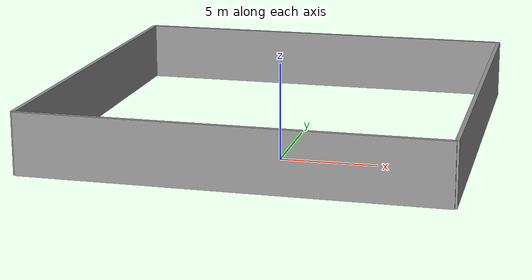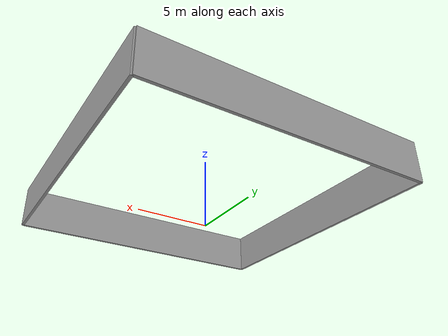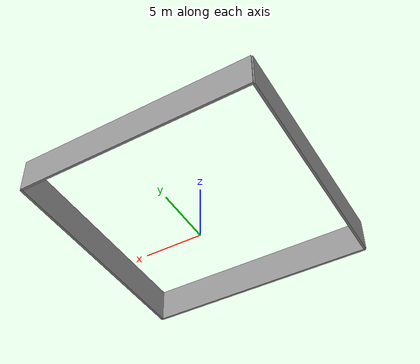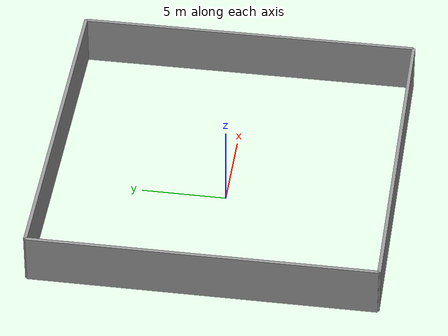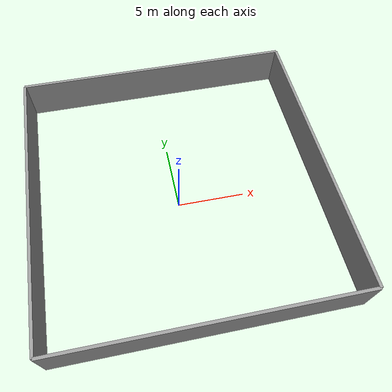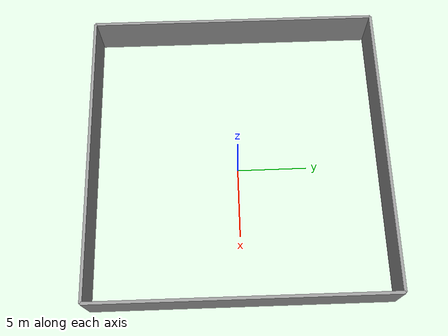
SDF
<?xml version='1.0'?>
<sdf version='1.7'>
  <model name='Simple Room'>
    <pose>0 0 0 0 0 0</pose>

    <link name='Wall_1'>
      <collision name='Wall_1_Collision'>
        <geometry>
          <box>
            <size>0.2 20 3</size>
          </box>
        </geometry>
        <pose>0 0 1.5 0 0 0</pose>
      </collision>
      <visual name='Wall_1_Visual'>
        <geometry>
          <box>
            <size>0.2 20 3</size>
          </box>
        </geometry>
        <pose>0 0 1.5 0 0 0</pose>
        <material>
          <script>
            <uri>file://media/materials/scripts/gazebo.material</uri>
            <name>Gazebo/Grey</name>
          </script>
          <ambient>1 1 1 1</ambient>
        </material>
        <meta>
          <layer>0</layer>
        </meta>
      </visual>
      <pose>-10 0 1.5 0 0 0</pose>
    </link>

    <link name='Wall_2'>
      <collision name='Wall_2_Collision'>
        <geometry>
          <box>
            <size>0.2 20 3</size>
          </box>
        </geometry>
        <pose>0 0 1.5 0 0 0</pose>
      </collision>
      <visual name='Wall_2_Visual'>
        <geometry>
          <box>
            <size>0.2 20 3</size>
          </box>
        </geometry>
        <pose>0 0 1.5 0 0 0</pose>
        <material>
          <script>
            <uri>file://media/materials/scripts/gazebo.material</uri>
            <name>Gazebo/Grey</name>
          </script>
          <ambient>1 1 1 1</ambient>
        </material>
        <meta>
          <layer>0</layer>
        </meta>
      </visual>
      <pose>10 0 1.5 0.0 0.0 0.0</pose>
    </link>

    <link name='Wall_3'>
      <collision name='Wall_3_Collision'>
        <geometry>
          <box>
            <size>0.2 20 3</size>
          </box>
        </geometry>
        <pose>0 0 1.5 0 0 0</pose>
      </collision>
      <visual name='Wall_3_Visual'>
        <geometry>
          <box>
            <size>0.2 20 3</size>
          </box>
        </geometry>
        <pose>0 0 1.5 0 0 0</pose>
        <material>
          <script>
            <uri>file://media/materials/scripts/gazebo.material</uri>
            <name>Gazebo/Grey</name>
          </script>
          <ambient>1 1 1 1</ambient>
        </material>
        <meta>
          <layer>0</layer>
        </meta>
      </visual>
      <pose>0 10 1.5 0.0 0.0 1.570494235572534</pose>
    </link>

    <link name='Wall_4'>
      <collision name='Wall_4_Collision'>
        <geometry>
          <box>
            <size>0.2 20 3</size>
          </box>
        </geometry>
        <pose>0 0 1.5 0 0 0</pose>
      </collision>
      <visual name='Wall_4_Visual'>
        <geometry>
          <box>
            <size>0.2 20 3</size>
          </box>
        </geometry>
        <pose>0 0 1.5 0 0 0</pose>
        <material>
          <script>
            <uri>file://media/materials/scripts/gazebo.material</uri>
            <name>Gazebo/Grey</name>
          </script>
          <ambient>1 1 1 1</ambient>
        </material>
        <meta>
          <layer>0</layer>
        </meta>
      </visual>
      <pose>0 -10 1.5 0.0 0.0 1.570494235572534</pose>
    </link>

    <static>1</static>
  </model>
</sdf>
